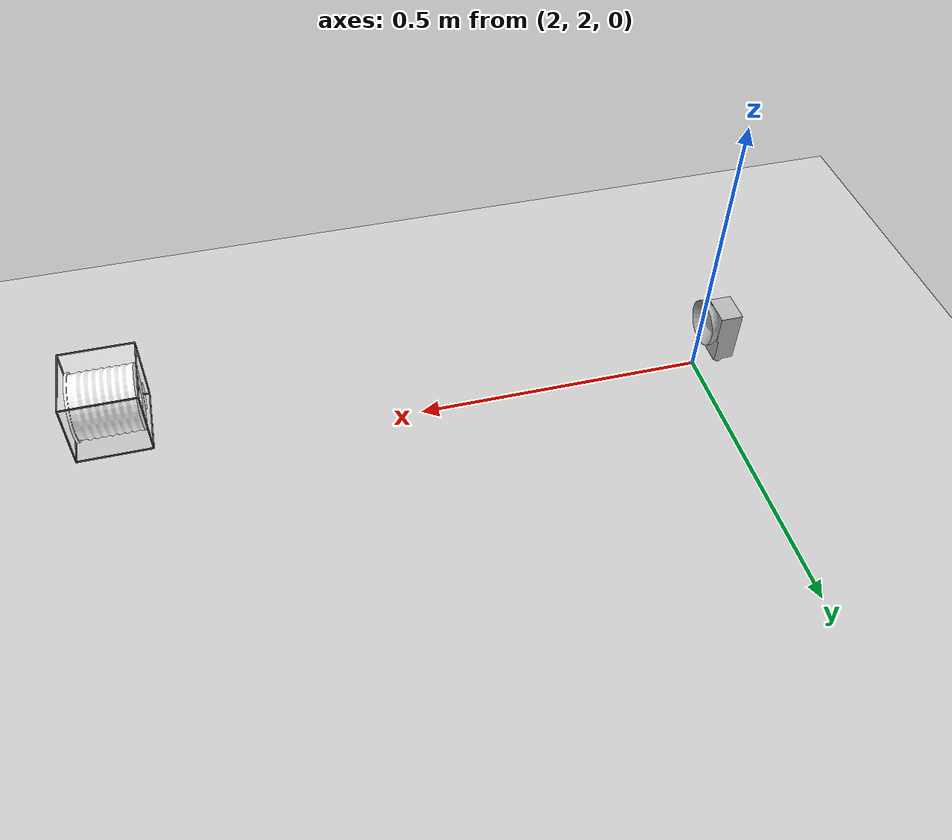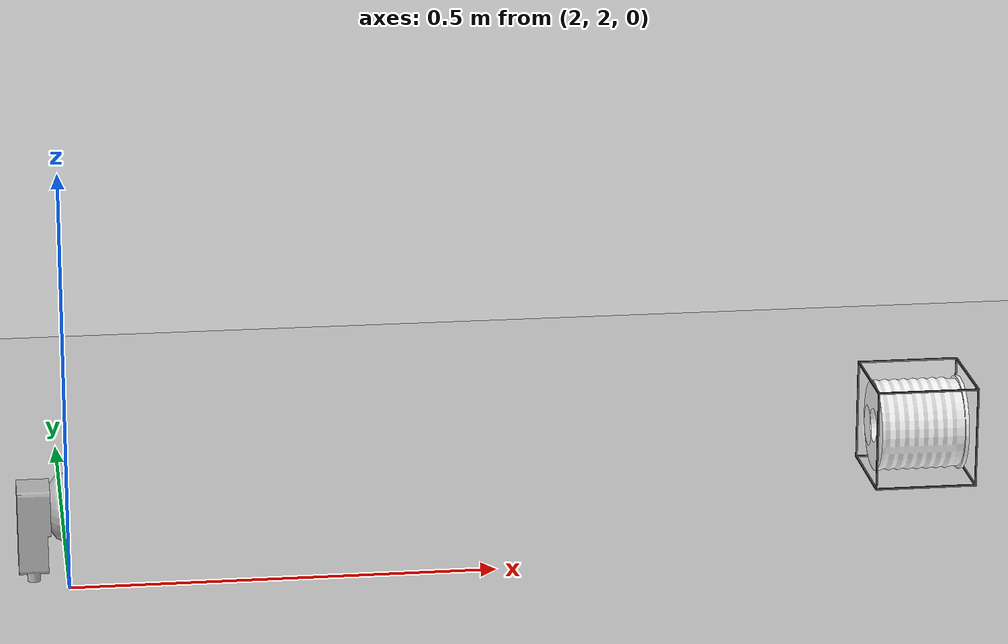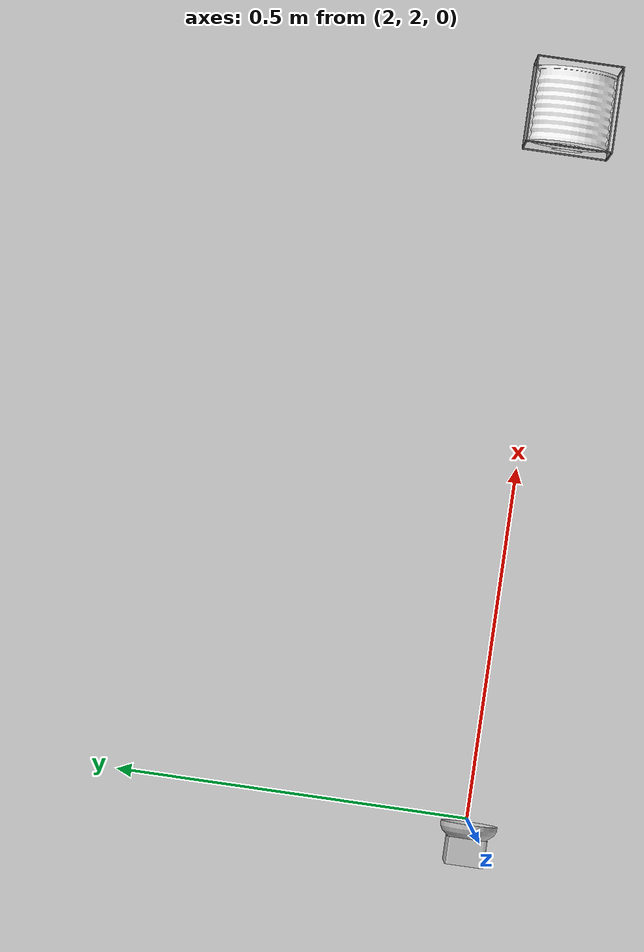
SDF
<sdf version="1.11">
  <world name="camera_world">
    <physics name="1ms" type="ignored">
      <max_step_size>0.001</max_step_size>
      <real_time_factor>1.0</real_time_factor>
    </physics>
    <plugin
      filename="gz-sim-physics-system"
      name="gz::sim::systems::Physics">
    </plugin>
    <plugin
      filename="gz-sim-user-commands-system"
      name="gz::sim::systems::UserCommands">
    </plugin>
    <plugin
      filename="gz-sim-scene-broadcaster-system"
      name="gz::sim::systems::SceneBroadcaster">
    </plugin>
    <plugin
      filename="gz-sim-sensors-system"
      name="gz::sim::systems::Sensors">
      <render_engine>ogre2</render_engine>
    </plugin>
    <plugin
      filename="gz-sim-logical-camera-system"
      name="gz::sim::systems::LogicalCamera">
      <render_engine>ogre2</render_engine>
    </plugin>

    <light type="directional" name="sun">
      <cast_shadows>true</cast_shadows>
      <pose>0 0 10 0 0 0</pose>
      <diffuse>0.8 0.8 0.8 1</diffuse>
      <specular>0.2 0.2 0.2 1</specular>
      <attenuation>
        <range>1000</range>
        <constant>0.9</constant>
        <linear>0.01</linear>
        <quadratic>0.001</quadratic>
      </attenuation>
      <direction>-0.5 0.1 -0.9</direction>
    </light>

    <model name="ground_plane">
      <static>true</static>
      <link name="link">
        <collision name="collision">
          <geometry>
            <plane>
              <normal>0 0 1</normal>
              <size>100 100</size>
            </plane>
          </geometry>
        </collision>
        <visual name="visual">
          <geometry>
            <plane>
              <normal>0 0 1</normal>
              <size>100 100</size>
            </plane>
          </geometry>
          <material>
            <ambient>0.8 0.8 0.8 1</ambient>
            <diffuse>0.8 0.8 0.8 1</diffuse>
            <specular>0.8 0.8 0.8 1</specular>
          </material>
        </visual>
      </link>
    </model>

    <include>
      <name>advanced_logical_camera</name>
      <pose>2 2 0.1 0 0 0</pose>
      <uri>model://advanced_logical_camera</uri>
    </include>

    <include>
      <name>pump_purple_b02</name>
      <pose>3 2 0.1 0 0 0</pose>
      <uri>model://pump</uri>
    </include>

  </world>
</sdf>

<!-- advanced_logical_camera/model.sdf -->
<sdf version="1.6">
  <model name="advanced_logical_camera">
    <static>true</static>
    <link name="advanced_logical_camera">
      <visual name="visual">
        <pose>-0.02 0 -0.02 0 0 -1.5708</pose>
        <geometry>
          <mesh>
            <uri>model://advanced_logical_camera/meshes/camera.dae</uri>
          </mesh>
        </geometry>
      </visual>

      <sensor name="advanced_logical_camera" type="logical_camera">
        <topic>gz_topic_advanced_logical_camera</topic>
        <logical_camera>
            <near>0</near>
            <far>11</far>
            <horizontal_fov>1.5</horizontal_fov>
            <aspect_ratio>1.2</aspect_ratio>
        </logical_camera>

        <visualize>true</visualize>
        <always_on>true</always_on>
        <update_rate>10</update_rate>

        <plugin name="ariac_sensors::AriacLogicalCameraPlugin" filename="libAriacLogicalCameraPlugin.so">
          <rostopic>ros_topic_advanced_logical_camera</rostopic>
          <gztopic>gz_topic_advanced_logical_camera</gztopic>
          <camera_type>advanced</camera_type>
          <camera_name>advanced_logical_camera</camera_name>
          <frame_name>advanced_logical_camera_frame</frame_name>
        </plugin>

      </sensor>
    </link>
  </model>
</sdf>

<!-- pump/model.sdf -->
<sdf version="1.6">
  <model name="pump">
    <static>false</static>
    <allow_auto_disable>false</allow_auto_disable>

    <link name="pump_link">
      <inertial>
        <pose>0 0 0.06 0 0 0</pose>
        <mass>4.67</mass>
        <inertia>
          <ixx>0.01120</ixx>
          <ixy>0</ixy>
          <ixz>0</ixz>
          <iyy>0.01120</iyy>
          <iyz>0</iyz>
          <izz>0.01120</izz>
        </inertia>
      </inertial>

      <visual name="base">
        <geometry>
          <mesh>
            <uri>model://pump/meshes/pump_base.stl</uri>
          </mesh>
        </geometry>
        <material>
          <ambient>1.0 1.0 1.0 1.0</ambient>
          <diffuse>1.0 1.0 1.0 1.0</diffuse>
        </material>
      </visual>

      <visual name="enclosure">
        <geometry>
          <mesh>
            <uri>model://pump/meshes/pump_enclosure.stl</uri>
          </mesh>
        </geometry>
        <material>
          <ambient>0.318 0.318 0.318 1.0</ambient>
          <diffuse>0.318 0.318 0.318 1.0</diffuse>
        </material>
      </visual>

      <visual name="front_pane">
        <geometry>
          <mesh>
            <uri>model://pump/meshes/pump_front_pane.stl</uri>
          </mesh>
        </geometry>
        <material>
          <ambient>1.0 1.0 1.0 0.2</ambient>
          <diffuse>1.0 1.0 1.0 0.2</diffuse>
        </material>
      </visual>

      <visual name="back_pane">
        <geometry>
          <mesh>
            <uri>model://pump/meshes/pump_back_pane.stl</uri>
          </mesh>
        </geometry>
        <material>
          <ambient>1.0 1.0 1.0 0.2</ambient>
          <diffuse>1.0 1.0 1.0 0.2</diffuse>
        </material>
      </visual>

      <visual name="top_pane">
        <geometry>
          <mesh>
            <uri>model://pump/meshes/pump_top_pane.stl</uri>
          </mesh>
        </geometry>
        <material>
          <ambient>1.0 1.0 1.0 0.2</ambient>
          <diffuse>1.0 1.0 1.0 0.2</diffuse>
        </material>
      </visual>

      <visual name="bottom_pane">
        <geometry>
          <mesh>
            <uri>model://pump/meshes/pump_bottom_pane.stl</uri>
          </mesh>
        </geometry>
        <material>
          <ambient>1.0 1.0 1.0 0.2</ambient>
          <diffuse>1.0 1.0 1.0 0.2</diffuse>
        </material>
      </visual>

      <visual name="right_pane">
        <geometry>
          <mesh>
            <uri>model://pump/meshes/pump_right_pane.stl</uri>
          </mesh>
        </geometry>
        <material>
          <ambient>1.0 1.0 1.0 0.2</ambient>
          <diffuse>1.0 1.0 1.0 0.2</diffuse>
        </material>
      </visual>

      <visual name="left_pane">
        <geometry>
          <mesh>
            <uri>model://pump/meshes/pump_left_pane.stl</uri>
          </mesh>
        </geometry>
        <material>
          <ambient>1.0 1.0 1.0 0.2</ambient>
          <diffuse>1.0 1.0 1.0 0.2</diffuse>
        </material>
      </visual>

      <collision name="collision">
        <geometry>
          <mesh>
            <uri>model://pump/meshes/pump_collision.stl</uri>
          </mesh>
        </geometry>
        <max_contacts>20</max_contacts>
        <surface>
          <contact>
            <ode>
              <max_vel>0.0</max_vel>
              <min_depth>0.1</min_depth>
            </ode>
          </contact>
          <friction>
            <ode>
              <mu>1000</mu>
              <mu2>1000</mu2>
            </ode>
          </friction>
        </surface>
      </collision>
    </link>
  </model>
</sdf>
